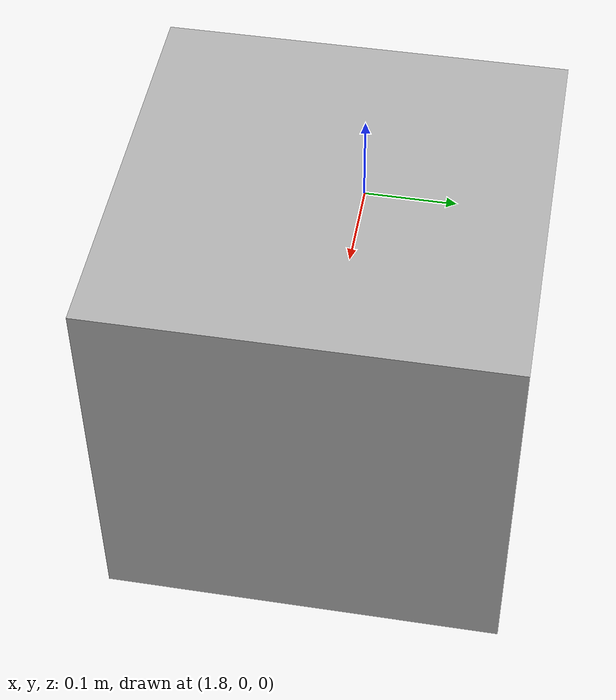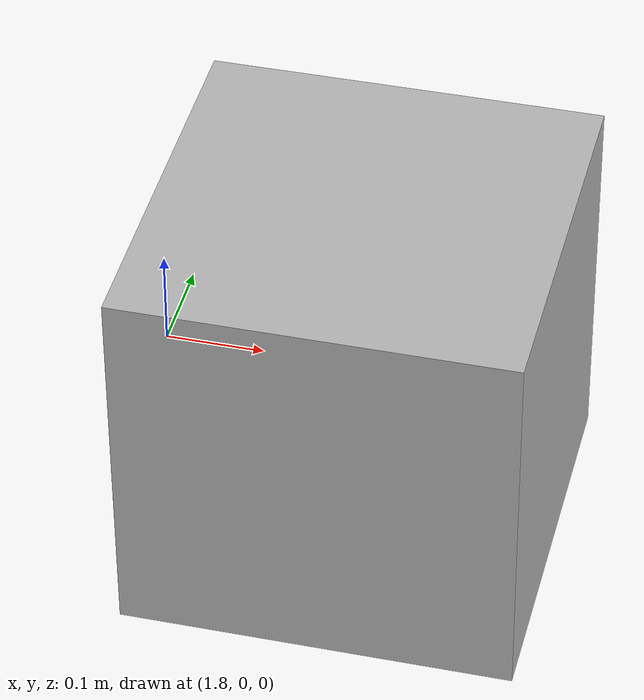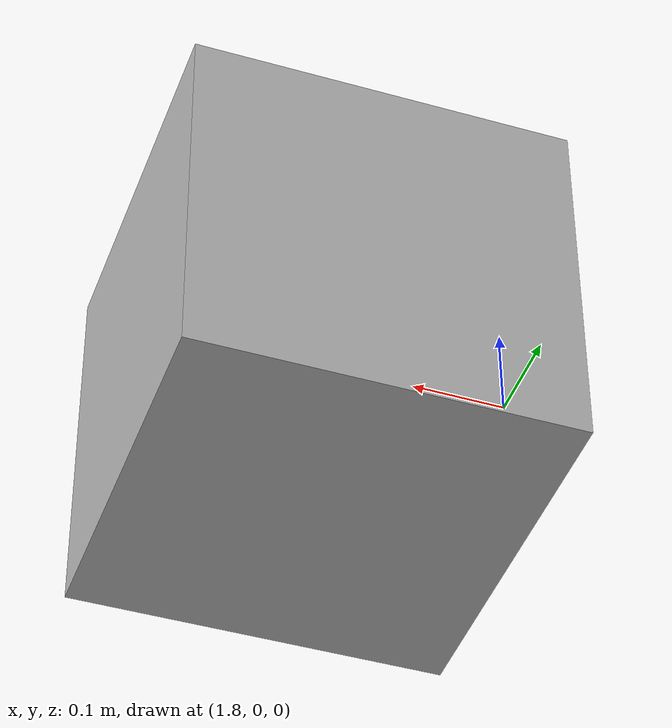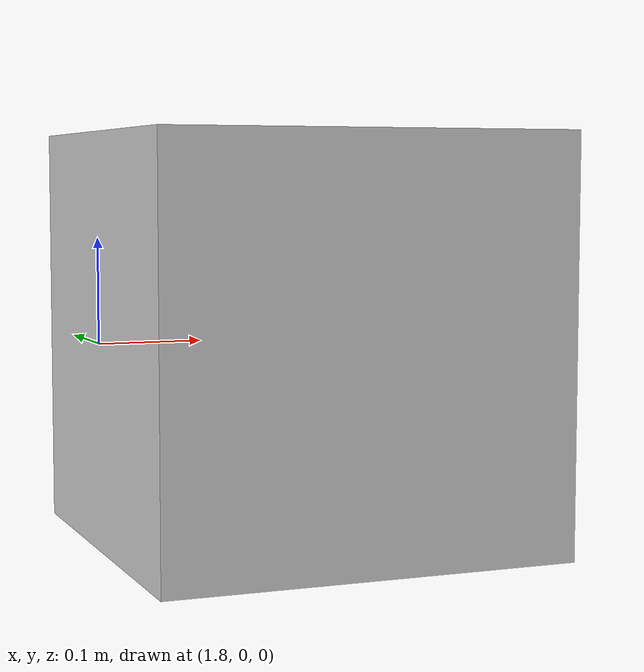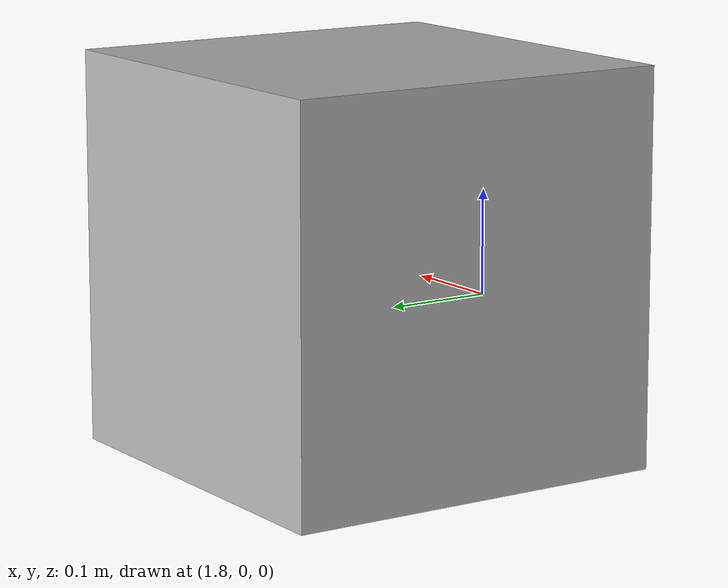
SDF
<?xml version="1.0"?>
<sdf version="1.6">

<!-- Obstacle -->
<model name="obstacle">
  <link name="obstacle">
    <pose>2 0 0 0 0 0</pose>

    <collision name="collision">
      <geometry>
        <box>
          <size>0.4 0.4 0.4</size>
        </box>
      </geometry>
    </collision>

    <visual name="visual">
      <geometry>
        <box>
          <size>0.4 0.4 0.4</size>
        </box>
      </geometry>
      <material>
        <script>
          <uri>model://obstacle/materials/scripts</uri>
          <uri>model://obstacle/materials/textures</uri>
          <name>vehicle/obstacle</name>
        </script>
      </material>
    </visual>
  </link>
</model>
</sdf>
